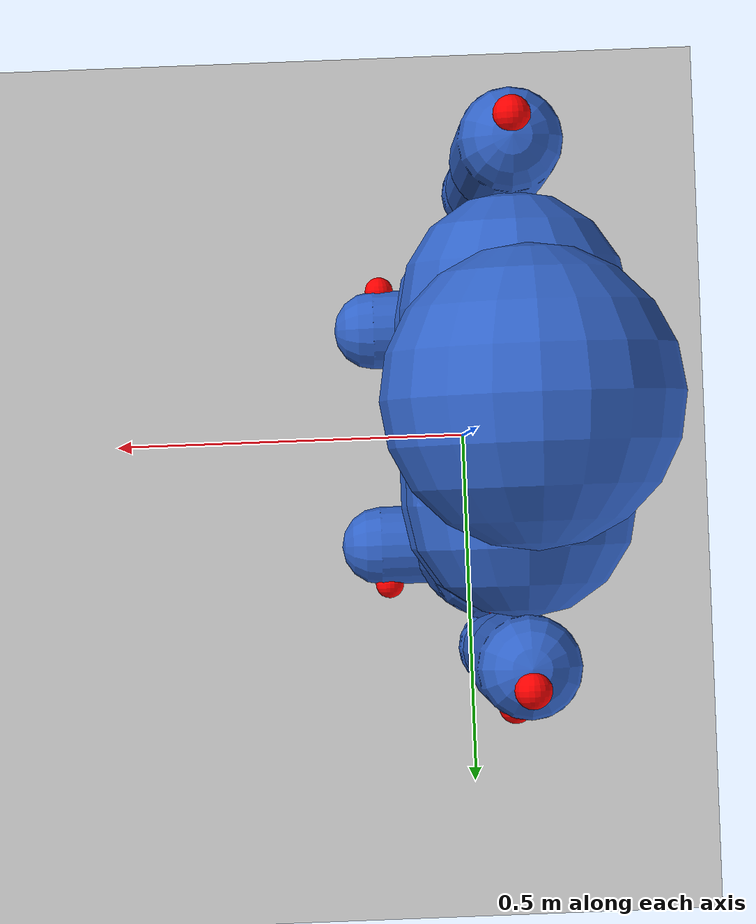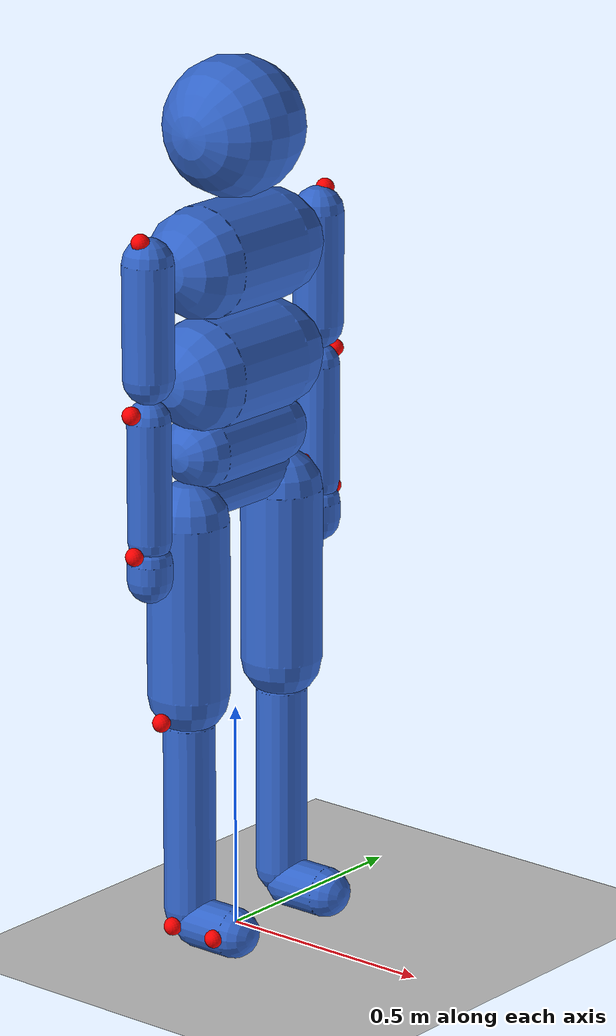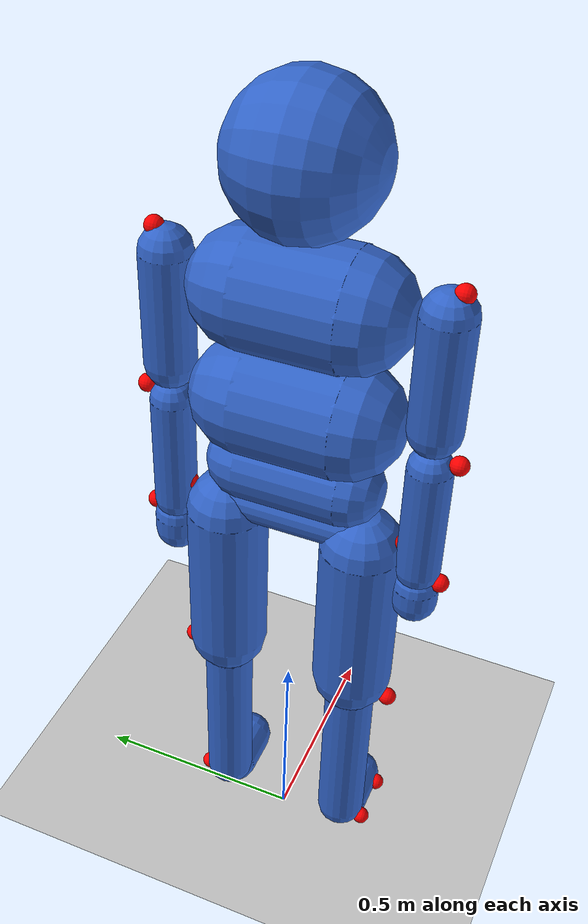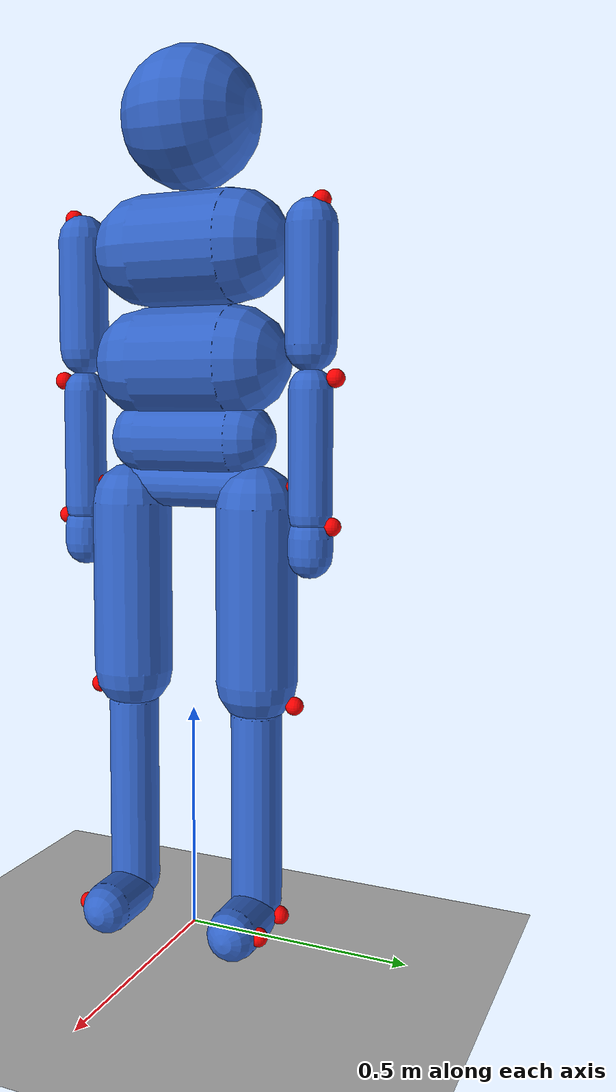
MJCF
<?xml version='1.0' encoding='utf-8'?>
<mujoco model="dusan">
  <worldbody>
    <geom type="plane" size="1 1 .1" rgba=".8 .8 .8 1" />
    <light diffuse=".8 .8 .8" pos="0 0 3" dir="0 0 -1" />
    <body name="thorax" pos="0 0 1.643728813559322" euler="90 0 0">
      <joint type="free" pos="0 0 0" />
      <geom type="capsule" size="0.12265536723163843 0.10447740112994347" pos="0 -0.12265536723163843 0" euler="0 0 0" rgba="0.2 0.4 0.8 1" />
      <geom type="capsule" size="0.12265536723163843 0.10447740112994347" pos="0 -0.3679661016949153 0" euler="0 0 0" rgba="0.2 0.4 0.8 1" />
      <inertial mass="30.4" pos="0.0 -0.204221186440678 -0.0014718644067796612" fullinertia="0.02 0.03 0.04 0.001 0.002 0.003" />
      <body name="head" pos="0 0 0">
        <joint name="head_x" type="hinge" axis="1 0 0" pos="0 0 0" range="-45.0 45.0" />
        <joint name="head_y" type="hinge" axis="0 1 0" pos="0 0 0" range="-80 80" />
        <joint name="head_z" type="hinge" axis="0 0 1" pos="0 0 0" range="-60 75.0" />
        <geom type="sphere" size="0.15313559322033898" pos="0 0.15313559322033898 0" euler="0 0 0" rgba="0.2 0.4 0.8 1" />
        <inertial mass="6.7" pos="0.0061254237288135595 0.16354881355932205 0.000306271186440678" fullinertia="0.02 0.03 0.04 0.001 0.002 0.003" />
      </body>
      <body name="abdomen" pos="0 -0.3679661016949153 0">
        <joint name="abdomen_x" type="hinge" axis="1 0 0" pos="0 0 0" range="-12.5 12.5" />
        <joint name="abdomen_y" type="hinge" axis="0 1 0" pos="0 0 0" range="-15 15" />
        <joint name="abdomen_z" type="hinge" axis="0 0 1" pos="0 0 0" range="-25 12.5" />
        <geom type="capsule" size="0.08317796610169491 0.1104449152542373" pos="0 -0.16635593220338982 0" euler="0 0 0" rgba="0.2 0.4 0.8 1" />
        <inertial mass="2.9" pos="0.02927864406779661 -0.06005449152542372 -0.005489745762711864" fullinertia="0.02 0.03 0.04 0.001 0.002 0.003" />
        <body name="pelvis" pos="0 -0.16635593220338982 0">
          <joint name="pelvis_x" type="hinge" axis="1 0 0" pos="0 0 0" range="-12.5 12.5" />
          <joint name="pelvis_y" type="hinge" axis="0 1 0" pos="0 0 0" range="-15 15" />
          <joint name="pelvis_z" type="hinge" axis="0 0 1" pos="0 0 0" range="-25 12.5" />
          <geom type="capsule" size="0.05122881355932203 0.12917372881355935" pos="0 -0.10245762711864406 0" euler="0 0 0" rgba="0.2 0.4 0.8 1" />
          <inertial mass="14.2" pos="-0.00020491525423728814 -0.02889305084745762 -0.0006147457627118644" fullinertia="0.02 0.03 0.04 0.001 0.002 0.003" />
          <body name="left_thigh" pos="0 -0.10245762711864406 -0.15478813559322036">
            <joint name="left_hip_x" type="hinge" axis="1 0 0" pos="0 0 0" range="-20.0 40.0" />
            <joint name="left_hip_y" type="hinge" axis="0 1 0" pos="0 0 0" range="-40 50" />
            <joint name="left_hip_z" type="hinge" axis="0 0 1" pos="0 0 0" range="-30 100.0" />
            <geom type="capsule" size="0.08978813559322034 0.19307203389830507" pos="0 -0.23796610169491525 0" euler="-90 0 0" rgba="0.2 0.4 0.8 1" />
            <inertial mass="12.3" pos="-0.019513220338983048 -0.20417491525423728 0.015705762711864406" fullinertia="0.02 0.03 0.04 0.001 0.002 0.003" />
            <site name="greater_trochanter_left" pos="0.0 0.0 -0.08978813559322034" size="0.02" rgba="1 0 0 1" />
            <site name="lateral_femoral_epicondyle_left" pos="0.0 -0.4759322033898305 -0.08978813559322034" size="0.02" rgba="1 0 0 1" />
            <body name="left_shank" pos="0 -0.4759322033898305 0">
              <joint name="left_knee_z" type="hinge" axis="0 0 1" pos="0 0 0" range="-150 0.0" />
              <geom type="capsule" size="0.056737288135593214 0.21014830508474577" pos="0 -0.23851694915254237 0" euler="-90 0 0" rgba="0.2 0.4 0.8 1" />
              <inertial mass="4.8" pos="-0.022897627118644067 -0.19558389830508474 0.0033392372881355928" fullinertia="0.02 0.03 0.04 0.001 0.002 0.003" />
              <site name="lateral_maleollus_left" pos="0.0 -0.47703389830508475 -0.056737288135593214" size="0.02" rgba="1 0 0 1" />
              <body name="left_foot" pos="0 -0.47703389830508475 0">
                <joint name="left_ankle_y" type="hinge" axis="0 1 0" pos="0 0 0" range="-30 30" />
                <joint name="left_ankle_z" type="hinge" axis="0 0 1" pos="0 0 0" range="-20 30.0" />
                <geom type="capsule" size="0.05563559322033899 0.04875" pos="0.07656779661016949 0 0" euler="0 90 0" rgba="0.2 0.4 0.8 1" />
                <inertial mass="1.2" pos="0.07687406779661017 -0.030473983050847454 0.005206610169491525" fullinertia="0.02 0.03 0.04 0.001 0.002 0.003" />
                <site name="metatarsal_fifth_left" pos="0.11485169491525424 0.0 -0.05563559322033899" size="0.02" rgba="1 0 0 1" />
              </body>
            </body>
          </body>
          <body name="right_thigh" pos="0 -0.10245762711864406 0.15478813559322036">
            <joint name="right_hip_x" type="hinge" axis="1 0 0" pos="0 0 0" range="-40.0 20.0" />
            <joint name="right_hip_y" type="hinge" axis="0 1 0" pos="0 0 0" range="-40 50" />
            <joint name="right_hip_z" type="hinge" axis="0 0 1" pos="0 0 0" range="-30 100.0" />
            <geom type="capsule" size="0.08978813559322034 0.19307203389830507" pos="0 -0.23796610169491525 0" euler="-90 0 0" rgba="0.2 0.4 0.8 1" />
            <inertial mass="12.3" pos="-0.019513220338983048 -0.20417491525423728 0.015705762711864406" fullinertia="0.02 0.03 0.04 0.001 0.002 0.003" />
            <site name="greater_trochanter_right" pos="0.0 0.0 0.08978813559322034" size="0.02" rgba="1 0 0 1" />
            <site name="lateral_femoral_epicondyle_right" pos="0.0 -0.4759322033898305 0.08978813559322034" size="0.02" rgba="1 0 0 1" />
            <body name="right_shank" pos="0 -0.4759322033898305 0">
              <joint name="right_knee_z" type="hinge" axis="0 0 1" pos="0 0 0" range="-150 0.0" />
              <geom type="capsule" size="0.056737288135593214 0.21014830508474577" pos="0 -0.23851694915254237 0" euler="-90 0 0" rgba="0.2 0.4 0.8 1" />
              <inertial mass="4.8" pos="-0.022897627118644067 -0.19558389830508474 0.0033392372881355928" fullinertia="0.02 0.03 0.04 0.001 0.002 0.003" />
              <site name="lateral_maleollus_right" pos="0.0 -0.47703389830508475 0.056737288135593214" size="0.02" rgba="1 0 0 1" />
              <body name="right_foot" pos="0 -0.47703389830508475 0">
                <joint name="right_ankle_y" type="hinge" axis="0 1 0" pos="0 0 0" range="-30 30" />
                <joint name="right_ankle_z" type="hinge" axis="0 0 1" pos="0 0 0" range="-20 30.0" />
                <geom type="capsule" size="0.05563559322033899 0.04875" pos="0.07656779661016949 0 0" euler="0 90 0" rgba="0.2 0.4 0.8 1" />
                <inertial mass="1.2" pos="0.07687406779661017 -0.030473983050847454 0.005206610169491525" fullinertia="0.02 0.03 0.04 0.001 0.002 0.003" />
                <site name="metatarsal_fifth_right" pos="0.11485169491525424 0.0 0.05563559322033899" size="0.02" rgba="1 0 0 1" />
              </body>
            </body>
          </body>
        </body>
      </body>
      <body name="left_upper_arm" pos="0 -0.1011906779661017 -0.2782506779661017">
        <joint name="left_shoulder_x" type="hinge" axis="1 0 0" pos="0 0.04056 0" range="-50.0 180.0" />
        <joint name="left_shoulder_y" type="hinge" axis="0 1 0" pos="0 0.04056 0" range="-90 90" />
        <joint name="left_shoulder_z" type="hinge" axis="0 0 1" pos="0 0.04056 0" range="-50 180.0" />
        <geom type="capsule" size="0.05563559322033899 0.12476694915254237" pos="0 -0.11202474576271186 0" euler="-90 0 0" rgba="0.2 0.4 0.8 1" />
        <inertial mass="2.4" pos="0.005493050847457628 -0.14709169491525426 -0.009460254237288135" fullinertia="0.02 0.03 0.04 0.001 0.002 0.003" />
        <site name="acromion_left" pos="0.0 0.061033898305084745 -0.022254237288135595" size="0.02" rgba="1 0 0 1" />
        <site name="lateral_humeral_epicondyle_left" pos="0.0 -0.3051694915254237 -0.05563559322033899" size="0.02" rgba="1 0 0 1" />
        <body name="left_forearm" pos="0 -0.3051694915254237 0">
          <joint name="left_elbow_z" type="hinge" axis="0 0 1" pos="0 0 0" range="0 150.0" />
          <geom type="capsule" size="0.0473728813559322 0.13220338983050844" pos="0 -0.15588983050847455 0" euler="-90 0 0" rgba="0.2 0.4 0.8 1" />
          <inertial mass="1.7000000000000002" pos="-0.0040531355932203385 -0.13001211864406778 0.00342957627118644" fullinertia="0.02 0.03 0.04 0.001 0.002 0.003" />
          <body name="left_hand" pos="0 -0.3117796610169491 0">
            <joint name="left_wrist_y" type="hinge" axis="0 1 0" pos="0 0 0" range="-80 80" />
            <joint name="left_wrist_z" type="hinge" axis="0 0 1" pos="0 0 0" range="-60 60.0" />
            <geom type="capsule" size="0.04902542372881356 0.019555084745762712" pos="0 -0.04406779661016949 0" euler="-90 0 0" rgba="0.2 0.4 0.8 1" />
            <inertial mass="0.6" pos="0.007227118644067796 -0.07394576271186441 0.006610169491525424" fullinertia="0.02 0.03 0.04 0.001 0.002 0.003" />
            <site name="ulnar_styloid_left" pos="0.0 0.0 -0.04902542372881356" size="0.02" rgba="1 0 0 1" />
          </body>
        </body>
      </body>
      <body name="right_upper_arm" pos="0 -0.1011906779661017 0.2782506779661017">
        <joint name="right_shoulder_x" type="hinge" axis="1 0 0" pos="0 0.04056 0" range="-180.0 50.0" />
        <joint name="right_shoulder_y" type="hinge" axis="0 1 0" pos="0 0.04056 0" range="-90 90" />
        <joint name="right_shoulder_z" type="hinge" axis="0 0 1" pos="0 0.04056 0" range="-50 180.0" />
        <geom type="capsule" size="0.05563559322033899 0.12476694915254237" pos="0 -0.11202474576271186 0" euler="-90 0 0" rgba="0.2 0.4 0.8 1" />
        <inertial mass="2.4" pos="0.005493050847457628 -0.14709169491525426 -0.009460254237288135" fullinertia="0.02 0.03 0.04 0.001 0.002 0.003" />
        <site name="acromion_right" pos="0.0 0.061033898305084745 0.022254237288135595" size="0.02" rgba="1 0 0 1" />
        <site name="lateral_humeral_epicondyle_right" pos="0.0 -0.3051694915254237 0.05563559322033899" size="0.02" rgba="1 0 0 1" />
        <body name="right_forearm" pos="0 -0.3051694915254237 0">
          <joint name="right_elbow_z" type="hinge" axis="0 0 1" pos="0 0 0" range="0 150.0" />
          <geom type="capsule" size="0.0473728813559322 0.13220338983050844" pos="0 -0.15588983050847455 0" euler="-90 0 0" rgba="0.2 0.4 0.8 1" />
          <inertial mass="1.7000000000000002" pos="-0.0040531355932203385 -0.13001211864406778 0.00342957627118644" fullinertia="0.02 0.03 0.04 0.001 0.002 0.003" />
          <body name="right_hand" pos="0 -0.3117796610169491 0">
            <joint name="right_wrist_y" type="hinge" axis="0 1 0" pos="0 0 0" range="-80 80" />
            <joint name="right_wrist_z" type="hinge" axis="0 0 1" pos="0 0 0" range="-60 60.0" />
            <geom type="capsule" size="0.04902542372881356 0.019555084745762712" pos="0 -0.04406779661016949 0" euler="-90 0 0" rgba="0.2 0.4 0.8 1" />
            <inertial mass="0.6" pos="0.007227118644067796 -0.07394576271186441 0.006610169491525424" fullinertia="0.02 0.03 0.04 0.001 0.002 0.003" />
            <site name="ulnar_styloid_right" pos="0.0 0.0 0.04902542372881356" size="0.02" rgba="1 0 0 1" />
          </body>
        </body>
      </body>
    </body>
  </worldbody>
  <option gravity="0 0 -9.81" />
</mujoco>
